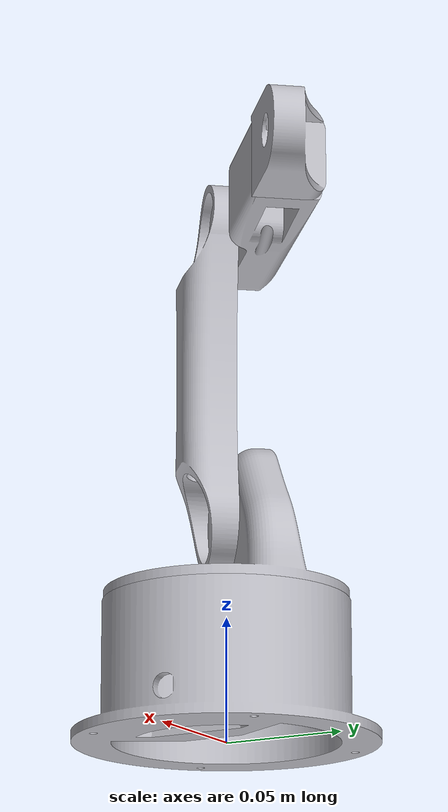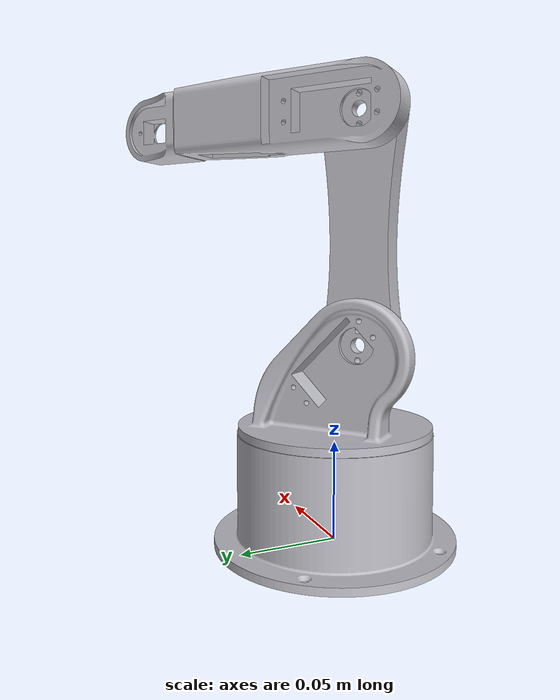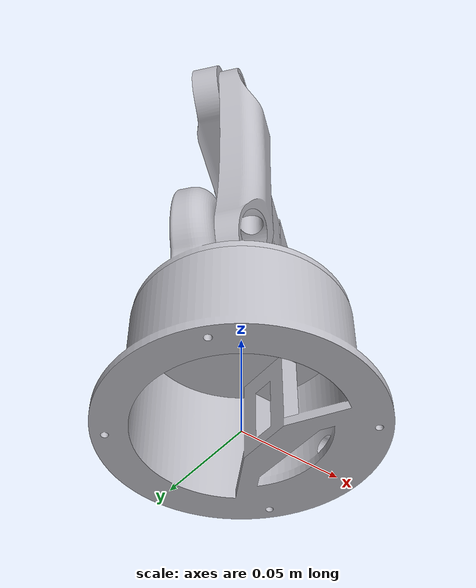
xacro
<?xml version="1.0"?>
<robot name="robotic" xmlns:xacro="http://www.ros.org/wiki/xacro">

<xacro:include filename="$(find robotic_description)/urdf/materials.xacro"/>
<xacro:include filename="$(find robotic_description)/urdf/Robotic.ros2control"/>
<xacro:include filename="$(find robotic_description)/urdf/Robotic.gazebo"/>

<!-- ================= BASE ================= -->

<link name="base_link">

  <inertial>
    <origin xyz="0 0 0" rpy="0 0 0"/>
    <mass value="1.0"/>
    <inertia ixx="0.001" iyy="0.001" izz="0.001"
             ixy="0" iyz="0" ixz="0"/>
  </inertial>

  <visual>
    <origin xyz="0 0 0" rpy="0 0 0"/>
    <geometry>
      <mesh filename="file://$(find robotic_description)/meshes/base_link.stl"
             scale="0.001 0.001 0.001"/>
    </geometry>
    <material name="silver"/>
  </visual>

  <collision>
    <origin xyz="0 0 0" rpy="0 0 0"/>
    <geometry>
      <mesh filename="file://$(find robotic_description)/meshes/base_link.stl"
             scale="0.001 0.001 0.001"/>
    </geometry>
  </collision>

</link>

<!-- ================= WAIST ================= -->

<link name="Waist_1">

  <inertial>
    <origin xyz="0 0 0" rpy="0 0 0"/>
    <mass value="0.5"/>
    <inertia ixx="0.001" iyy="0.001" izz="0.001"
             ixy="0" iyz="0" ixz="0"/>
  </inertial>

  <visual>
    <origin xyz="0 0 -0.056" rpy="0 0 0"/>
    <geometry>
      <mesh filename="file://$(find robotic_description)/meshes/Waist_1.stl"
             scale="0.001 0.001 0.001"/>
    </geometry>
    <material name="silver"/>
  </visual>

  <collision>
    <origin xyz="0 0 -0.056" rpy="0 0 0"/>
    <geometry>
      <mesh filename="file://$(find robotic_description)/meshes/Waist_1.stl"
             scale="0.001 0.001 0.001"/>
    </geometry>
  </collision>

</link>

<!-- ================= ARM 1 ================= -->

<link name="Arm_01_1">

  <inertial>
    <origin xyz="0 0 0" rpy="0 0 0"/>
    <mass value="0.5"/>
    <inertia ixx="0.001" iyy="0.001" izz="0.001"
             ixy="0" iyz="0" ixz="0"/>
  </inertial>

  <visual>
    <origin xyz="0.006743 0.012807 -0.10028" rpy="0 0 0"/>
    <geometry>
      <mesh filename="file://$(find robotic_description)/meshes/Arm_01_1.stl"
             scale="0.001 0.001 0.001"/>
    </geometry>
    <material name="silver"/>
  </visual>

  <collision>
    <origin xyz="0.006743 0.012807 -0.10028" rpy="0 0 0"/>
    <geometry>
      <mesh filename="file://$(find robotic_description)/meshes/Arm_01_1.stl"
             scale="0.001 0.001 0.001"/>
    </geometry>
  </collision>

</link>

<!-- ================= ARM 2 ================= -->

<link name="Arm_02_1">

  <inertial>
    <origin xyz="0 0 0" rpy="0 0 0"/>
    <mass value="0.3"/>
    <inertia ixx="0.001" iyy="0.001" izz="0.001"
             ixy="0" iyz="0" ixz="0"/>
  </inertial>

  <visual>
    <origin xyz="0.006743 0.012807 -0.21303" rpy="0 0 0"/>
    <geometry>
      <mesh filename="file://$(find robotic_description)/meshes/Arm_02_1.stl"
             scale="0.001 0.001 0.001"/>
    </geometry>
    <material name="silver"/>
  </visual>

  <collision>
    <origin xyz="0.006743 0.012807 -0.21303" rpy="0 0 0"/>
    <geometry>
      <mesh filename="file://$(find robotic_description)/meshes/Arm_02_1.stl"
             scale="0.001 0.001 0.001"/>
    </geometry>
  </collision>

</link>

<!-- ================= ARM 3 ================= -->

<link name="Arm_03_1">

  <inertial>
    <origin xyz="0 0 0" rpy="0 0 0"/>
    <mass value="0.2"/>
    <inertia ixx="0.0001" iyy="0.0001" izz="0.0001"
             ixy="0" iyz="0" ixz="0"/>
  </inertial>

  <visual>
    <origin xyz="-0.007126 -0.081084 -0.20773" rpy="0 0 0"/>
    <geometry>
      <mesh filename="file://$(find robotic_description)/meshes/Arm_03_1.stl"
             scale="0.001 0.001 0.001"/>
    </geometry>
    <material name="silver"/>
  </visual>

  <collision>
    <origin xyz="-0.007126 -0.081084 -0.20773" rpy="0 0 0"/>
    <geometry>
      <mesh filename="file://$(find robotic_description)/meshes/Arm_03_1.stl"
             scale="0.001 0.001 0.001"/>
    </geometry>
  </collision>

</link>

<!-- ================= JOINTS ================= -->

<joint name="base_to_waist_joint" type="continuous">

  <parent link="base_link"/>
  <child link="Waist_1"/>

  <origin xyz="0 0 0.056" rpy="0 0 0"/>

  <axis xyz="0 0 1"/>

</joint>

<joint name="shoulder_joint" type="revolute">

  <parent link="Waist_1"/>
  <child link="Arm_01_1"/>

  <origin xyz="-0.006743 -0.012807 0.04428" rpy="0 0 0"/>

  <axis xyz="0 1 0"/>

  <limit lower="-1.57"
         upper="1.57"
         effort="100"
         velocity="1"/>

</joint>

<joint name="elbow_joint" type="revolute">

  <parent link="Arm_01_1"/>
  <child link="Arm_02_1"/>

  <origin xyz="0 0 0.11275" rpy="0 0 0"/>

  <axis xyz="0 1 0"/>

  <limit lower="-1.57"
         upper="1.57"
         effort="100"
         velocity="1"/>

</joint>

<joint name="wrist_roll_joint" type="continuous">

  <parent link="Arm_02_1"/>
  <child link="Arm_03_1"/>

  <origin xyz="0.013869 0.093891 -0.0053" rpy="0 0 0"/>

  <axis xyz="1 0 0"/>

</joint>

</robot>

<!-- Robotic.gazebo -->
<robot name="Robotic" xmlns:xacro="http://www.ros.org/wiki/xacro" >

<xacro:property name="body_color" value="Gazebo/Silver" />

<gazebo reference="base_link">
  <material>${body_color}</material>
  <mu1>0.2</mu1>
  <mu2>0.2</mu2>
  <self_collide>true</self_collide>
  <gravity>true</gravity>
</gazebo>

<gazebo reference="Waist_1">
  <material>${body_color}</material>
  <mu1>0.2</mu1>
  <mu2>0.2</mu2>
  <self_collide>true</self_collide>
</gazebo>

<gazebo reference="Arm_01_1">
  <material>${body_color}</material>
  <mu1>0.2</mu1>
  <mu2>0.2</mu2>
  <self_collide>true</self_collide>
</gazebo>

<gazebo reference="Arm_02_1">
  <material>${body_color}</material>
  <mu1>0.2</mu1>
  <mu2>0.2</mu2>
  <self_collide>true</self_collide>
</gazebo>

<gazebo reference="Arm_03_1">
  <material>${body_color}</material>
  <mu1>0.2</mu1>
  <mu2>0.2</mu2>
  <self_collide>true</self_collide>
</gazebo>

</robot>
